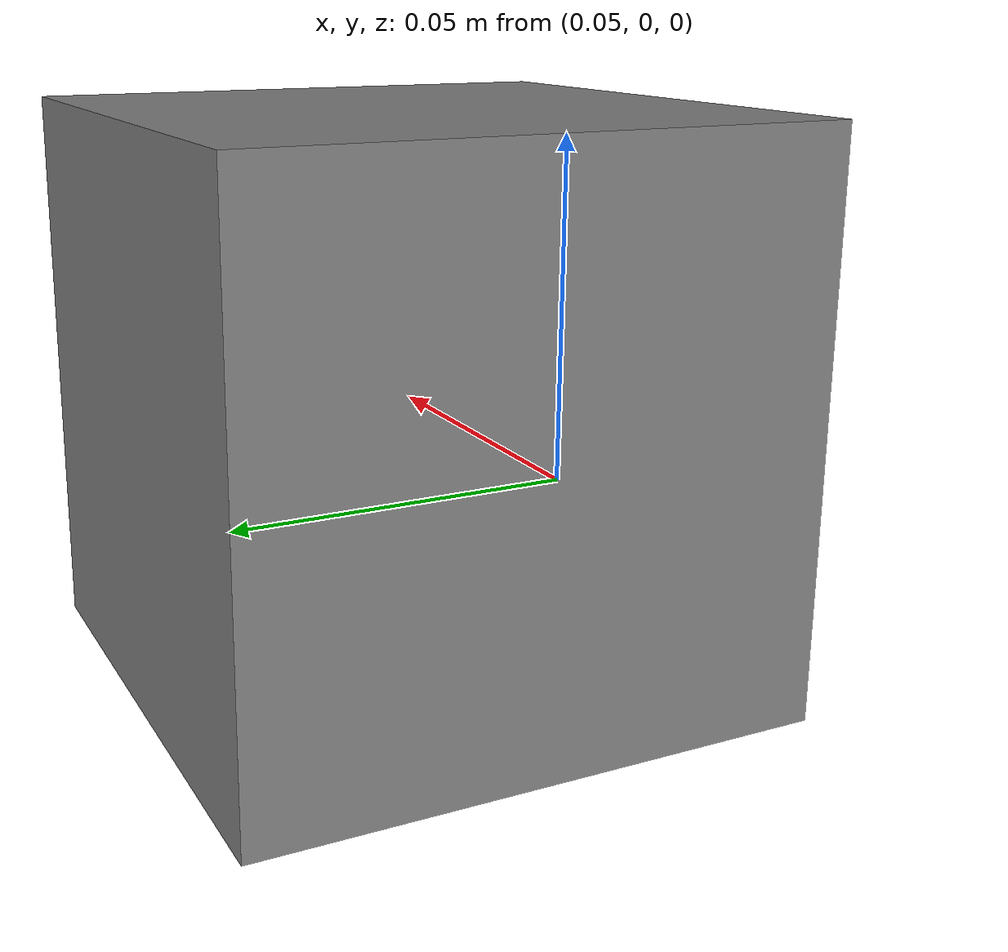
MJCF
<mujoco model="contact_at_rest">
  <!-- Minimal fixture for deterministic contact-guard tests. The arm's tip
       box overlaps the static wall box at qpos=0, so ncon > 0 from the first
       physics step. -->
  <compiler angle="radian"/>
  <option timestep="0.002" gravity="0 0 0"/>
  <worldbody>
    <body name="arm" pos="0 0 0">
      <joint name="j1" type="hinge" axis="0 0 1" range="-3.14 3.14"/>
      <geom name="tip" type="box" size="0.05 0.05 0.05" pos="0.1 0 0"
            contype="1" conaffinity="1"/>
    </body>
    <body name="wall" pos="0.1 0 0">
      <geom name="wall_geom" type="box" size="0.05 0.05 0.05"
            contype="1" conaffinity="1"/>
    </body>
    <body name="end_effector" pos="0.1 0 0"/>
  </worldbody>
  <actuator>
    <position name="a1" joint="j1" kp="50"/>
  </actuator>
</mujoco>
